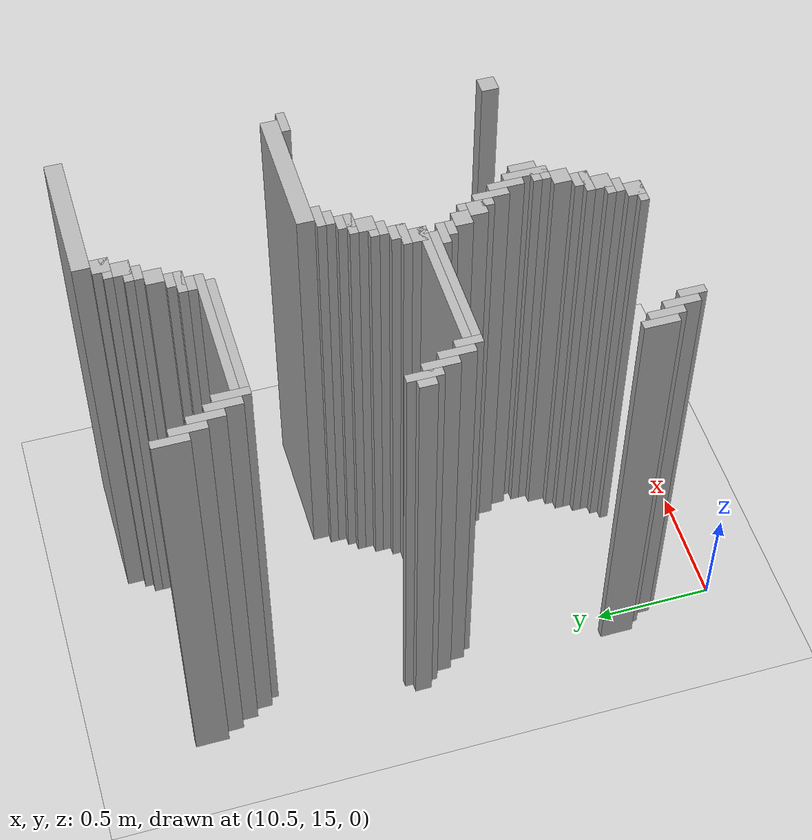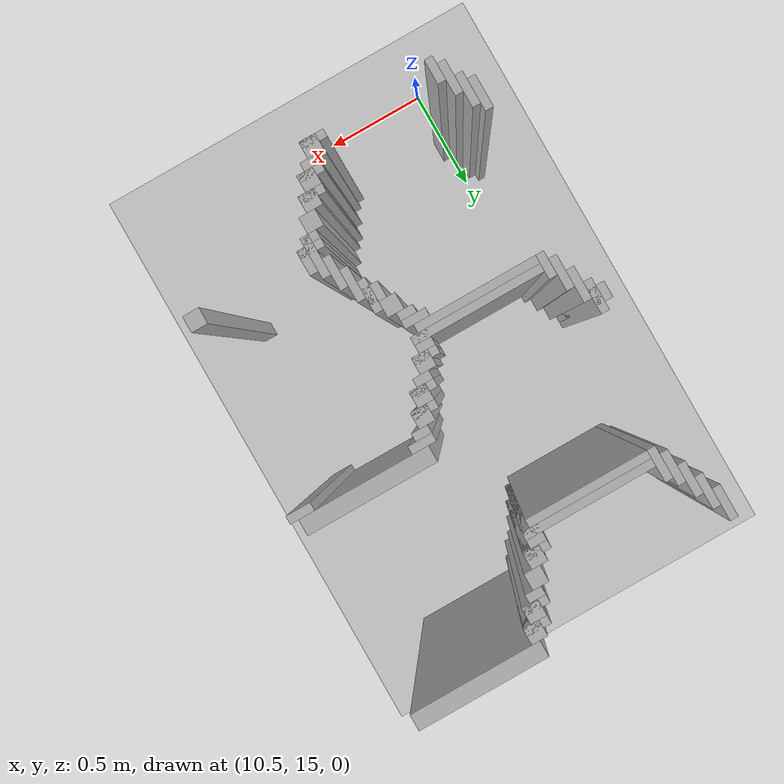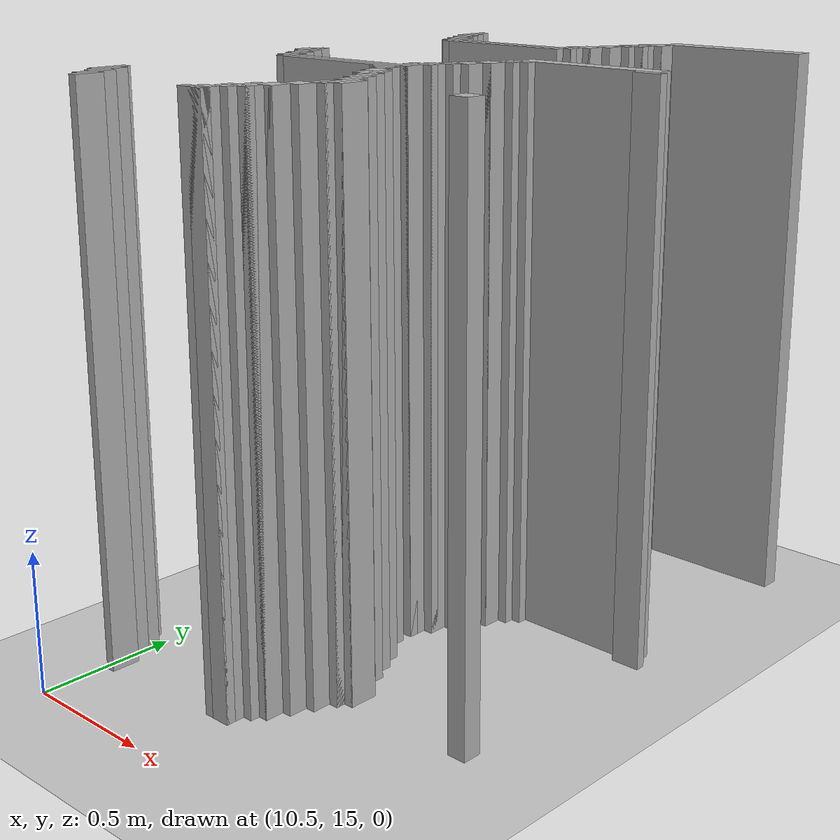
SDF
<sdf version="1.6">
 <world name="slam_world">
  <model name="ground_plane">
   <static>true</static>
   <link name="link">
    <collision name="collision">
     <geometry><plane><normal>0 0 1</normal><size>100 100</size></plane></geometry>
    </collision>
    <visual name="visual">
     <geometry><plane><normal>0 0 1</normal><size>100 100</size></plane></geometry>
     <material>
      <ambient>0.8 0.8 0.8 1</ambient>
      <diffuse>0.8 0.8 0.8 1</diffuse>
      <specular>0.8 0.8 0.8 1</specular>
     </material>
    </visual>
   </link>
  </model>
  <model name="wall_8">
   <static>true</static>
   <pose>11.519721577726218 17.366589327146173 1.0 0 0 0</pose>
   <link name="link">
    <collision name="collision">
     <geometry><box><size>0.5568445475638051 0.06960556844547564 2.0</size></box></geometry>
    </collision>
    <visual name="visual">
     <geometry><box><size>0.5568445475638051 0.06960556844547564 2.0</size></box></geometry>
     <material><ambient>0.5 0.5 0.5 1</ambient><diffuse>0.7 0.7 0.7 1</diffuse></material>
    </visual>
   </link>
  </model>
  <model name="wall_25">
   <static>true</static>
   <pose>11.241299303944315 17.296983758700694 1.0 0 0 0</pose>
   <link name="link">
    <collision name="collision">
     <geometry><box><size>0.06960556844547564 0.06960556844547564 2.0</size></box></geometry>
    </collision>
    <visual name="visual">
     <geometry><box><size>0.06960556844547564 0.06960556844547564 2.0</size></box></geometry>
     <material><ambient>0.5 0.5 0.5 1</ambient><diffuse>0.7 0.7 0.7 1</diffuse></material>
    </visual>
   </link>
  </model>
  <model name="wall_44">
   <static>true</static>
   <pose>10.38863109048724 17.22737819025522 1.0 0 0 0</pose>
   <link name="link">
    <collision name="collision">
     <geometry><box><size>0.03480278422273782 0.13921113689095127 2.0</size></box></geometry>
    </collision>
    <visual name="visual">
     <geometry><box><size>0.03480278422273782 0.13921113689095127 2.0</size></box></geometry>
     <material><ambient>0.5 0.5 0.5 1</ambient><diffuse>0.7 0.7 0.7 1</diffuse></material>
    </visual>
   </link>
  </model>
  <model name="wall_45">
   <static>true</static>
   <pose>11.223897911832946 17.279582366589327 1.0 0 0 0</pose>
   <link name="link">
    <collision name="collision">
     <geometry><box><size>0.10440835266821345 0.03480278422273782 2.0</size></box></geometry>
    </collision>
    <visual name="visual">
     <geometry><box><size>0.10440835266821345 0.03480278422273782 2.0</size></box></geometry>
     <material><ambient>0.5 0.5 0.5 1</ambient><diffuse>0.7 0.7 0.7 1</diffuse></material>
    </visual>
   </link>
  </model>
  <model name="wall_65">
   <static>true</static>
   <pose>11.206496519721577 17.22737819025522 1.0 0 0 0</pose>
   <link name="link">
    <collision name="collision">
     <geometry><box><size>0.06960556844547564 0.06960556844547564 2.0</size></box></geometry>
    </collision>
    <visual name="visual">
     <geometry><box><size>0.06960556844547564 0.06960556844547564 2.0</size></box></geometry>
     <material><ambient>0.5 0.5 0.5 1</ambient><diffuse>0.7 0.7 0.7 1</diffuse></material>
    </visual>
   </link>
  </model>
  <model name="wall_84">
   <static>true</static>
   <pose>10.423433874709977 17.157772621809745 1.0 0 0 0</pose>
   <link name="link">
    <collision name="collision">
     <geometry><box><size>0.03480278422273782 0.13921113689095127 2.0</size></box></geometry>
    </collision>
    <visual name="visual">
     <geometry><box><size>0.03480278422273782 0.13921113689095127 2.0</size></box></geometry>
     <material><ambient>0.5 0.5 0.5 1</ambient><diffuse>0.7 0.7 0.7 1</diffuse></material>
    </visual>
   </link>
  </model>
  <model name="wall_85">
   <static>true</static>
   <pose>11.189095127610209 17.209976798143853 1.0 0 0 0</pose>
   <link name="link">
    <collision name="collision">
     <geometry><box><size>0.10440835266821345 0.03480278422273782 2.0</size></box></geometry>
    </collision>
    <visual name="visual">
     <geometry><box><size>0.10440835266821345 0.03480278422273782 2.0</size></box></geometry>
     <material><ambient>0.5 0.5 0.5 1</ambient><diffuse>0.7 0.7 0.7 1</diffuse></material>
    </visual>
   </link>
  </model>
  <model name="wall_98">
   <static>true</static>
   <pose>11.17169373549884 17.17517401392111 1.0 0 0 0</pose>
   <link name="link">
    <collision name="collision">
     <geometry><box><size>0.06960556844547564 0.03480278422273782 2.0</size></box></geometry>
    </collision>
    <visual name="visual">
     <geometry><box><size>0.06960556844547564 0.03480278422273782 2.0</size></box></geometry>
     <material><ambient>0.5 0.5 0.5 1</ambient><diffuse>0.7 0.7 0.7 1</diffuse></material>
    </visual>
   </link>
  </model>
  <model name="wall_114">
   <static>true</static>
   <pose>10.458236658932714 17.08816705336427 1.0 0 0 0</pose>
   <link name="link">
    <collision name="collision">
     <geometry><box><size>0.03480278422273782 0.13921113689095127 2.0</size></box></geometry>
    </collision>
    <visual name="visual">
     <geometry><box><size>0.03480278422273782 0.13921113689095127 2.0</size></box></geometry>
     <material><ambient>0.5 0.5 0.5 1</ambient><diffuse>0.7 0.7 0.7 1</diffuse></material>
    </visual>
   </link>
  </model>
  <model name="wall_115">
   <static>true</static>
   <pose>11.1368909512761 17.122969837587007 1.0 0 0 0</pose>
   <link name="link">
    <collision name="collision">
     <geometry><box><size>0.06960556844547564 0.06960556844547564 2.0</size></box></geometry>
    </collision>
    <visual name="visual">
     <geometry><box><size>0.06960556844547564 0.06960556844547564 2.0</size></box></geometry>
     <material><ambient>0.5 0.5 0.5 1</ambient><diffuse>0.7 0.7 0.7 1</diffuse></material>
    </visual>
   </link>
  </model>
  <model name="wall_134">
   <static>true</static>
   <pose>10.493039443155451 17.01856148491879 1.0 0 0 0</pose>
   <link name="link">
    <collision name="collision">
     <geometry><box><size>0.03480278422273782 0.13921113689095127 2.0</size></box></geometry>
    </collision>
    <visual name="visual">
     <geometry><box><size>0.03480278422273782 0.13921113689095127 2.0</size></box></geometry>
     <material><ambient>0.5 0.5 0.5 1</ambient><diffuse>0.7 0.7 0.7 1</diffuse></material>
    </visual>
   </link>
  </model>
  <model name="wall_135">
   <static>true</static>
   <pose>11.102088167053363 17.053364269141532 1.0 0 0 0</pose>
   <link name="link">
    <collision name="collision">
     <geometry><box><size>0.06960556844547564 0.06960556844547564 2.0</size></box></geometry>
    </collision>
    <visual name="visual">
     <geometry><box><size>0.06960556844547564 0.06960556844547564 2.0</size></box></geometry>
     <material><ambient>0.5 0.5 0.5 1</ambient><diffuse>0.7 0.7 0.7 1</diffuse></material>
    </visual>
   </link>
  </model>
  <model name="wall_154">
   <static>true</static>
   <pose>10.52784222737819 16.983758700696054 1.0 0 0 0</pose>
   <link name="link">
    <collision name="collision">
     <geometry><box><size>0.03480278422273782 0.13921113689095127 2.0</size></box></geometry>
    </collision>
    <visual name="visual">
     <geometry><box><size>0.03480278422273782 0.13921113689095127 2.0</size></box></geometry>
     <material><ambient>0.5 0.5 0.5 1</ambient><diffuse>0.7 0.7 0.7 1</diffuse></material>
    </visual>
   </link>
  </model>
  <model name="wall_155">
   <static>true</static>
   <pose>11.084686774941995 17.035962877030162 1.0 0 0 0</pose>
   <link name="link">
    <collision name="collision">
     <geometry><box><size>0.10440835266821345 0.03480278422273782 2.0</size></box></geometry>
    </collision>
    <visual name="visual">
     <geometry><box><size>0.10440835266821345 0.03480278422273782 2.0</size></box></geometry>
     <material><ambient>0.5 0.5 0.5 1</ambient><diffuse>0.7 0.7 0.7 1</diffuse></material>
    </visual>
   </link>
  </model>
  <model name="wall_168">
   <static>true</static>
   <pose>11.067285382830626 16.983758700696054 1.0 0 0 0</pose>
   <link name="link">
    <collision name="collision">
     <geometry><box><size>0.06960556844547564 0.06960556844547564 2.0</size></box></geometry>
    </collision>
    <visual name="visual">
     <geometry><box><size>0.06960556844547564 0.06960556844547564 2.0</size></box></geometry>
     <material><ambient>0.5 0.5 0.5 1</ambient><diffuse>0.7 0.7 0.7 1</diffuse></material>
    </visual>
   </link>
  </model>
  <model name="wall_178">
   <static>true</static>
   <pose>10.82366589327146 16.966357308584687 1.0 0 0 0</pose>
   <link name="link">
    <collision name="collision">
     <geometry><box><size>0.5568445475638051 0.03480278422273782 2.0</size></box></geometry>
    </collision>
    <visual name="visual">
     <geometry><box><size>0.5568445475638051 0.03480278422273782 2.0</size></box></geometry>
     <material><ambient>0.5 0.5 0.5 1</ambient><diffuse>0.7 0.7 0.7 1</diffuse></material>
    </visual>
   </link>
  </model>
  <model name="wall_189">
   <static>true</static>
   <pose>10.806264501160092 16.93155452436195 1.0 0 0 0</pose>
   <link name="link">
    <collision name="collision">
     <geometry><box><size>0.5220417633410672 0.03480278422273782 2.0</size></box></geometry>
    </collision>
    <visual name="visual">
     <geometry><box><size>0.5220417633410672 0.03480278422273782 2.0</size></box></geometry>
     <material><ambient>0.5 0.5 0.5 1</ambient><diffuse>0.7 0.7 0.7 1</diffuse></material>
    </visual>
   </link>
  </model>
  <model name="wall_283">
   <static>true</static>
   <pose>11.519721577726218 16.531322505800464 1.0 0 0 0</pose>
   <link name="link">
    <collision name="collision">
     <geometry><box><size>0.5568445475638051 0.06960556844547564 2.0</size></box></geometry>
    </collision>
    <visual name="visual">
     <geometry><box><size>0.5568445475638051 0.06960556844547564 2.0</size></box></geometry>
     <material><ambient>0.5 0.5 0.5 1</ambient><diffuse>0.7 0.7 0.7 1</diffuse></material>
    </visual>
   </link>
  </model>
  <model name="wall_302">
   <static>true</static>
   <pose>11.258700696055683 16.479118329466356 1.0 0 0 0</pose>
   <link name="link">
    <collision name="collision">
     <geometry><box><size>0.10440835266821345 0.03480278422273782 2.0</size></box></geometry>
    </collision>
    <visual name="visual">
     <geometry><box><size>0.10440835266821345 0.03480278422273782 2.0</size></box></geometry>
     <material><ambient>0.5 0.5 0.5 1</ambient><diffuse>0.7 0.7 0.7 1</diffuse></material>
    </visual>
   </link>
  </model>
  <model name="wall_303">
   <static>true</static>
   <pose>11.780742459396752 16.479118329466356 1.0 0 0 0</pose>
   <link name="link">
    <collision name="collision">
     <geometry><box><size>0.10440835266821345 0.03480278422273782 2.0</size></box></geometry>
    </collision>
    <visual name="visual">
     <geometry><box><size>0.10440835266821345 0.03480278422273782 2.0</size></box></geometry>
     <material><ambient>0.5 0.5 0.5 1</ambient><diffuse>0.7 0.7 0.7 1</diffuse></material>
    </visual>
   </link>
  </model>
  <model name="wall_312">
   <static>true</static>
   <pose>11.241299303944315 16.44431554524362 1.0 0 0 0</pose>
   <link name="link">
    <collision name="collision">
     <geometry><box><size>0.06960556844547564 0.03480278422273782 2.0</size></box></geometry>
    </collision>
    <visual name="visual">
     <geometry><box><size>0.06960556844547564 0.03480278422273782 2.0</size></box></geometry>
     <material><ambient>0.5 0.5 0.5 1</ambient><diffuse>0.7 0.7 0.7 1</diffuse></material>
    </visual>
   </link>
  </model>
  <model name="wall_325">
   <static>true</static>
   <pose>11.206496519721577 16.39211136890951 1.0 0 0 0</pose>
   <link name="link">
    <collision name="collision">
     <geometry><box><size>0.06960556844547564 0.06960556844547564 2.0</size></box></geometry>
    </collision>
    <visual name="visual">
     <geometry><box><size>0.06960556844547564 0.06960556844547564 2.0</size></box></geometry>
     <material><ambient>0.5 0.5 0.5 1</ambient><diffuse>0.7 0.7 0.7 1</diffuse></material>
    </visual>
   </link>
  </model>
  <model name="wall_337">
   <static>true</static>
   <pose>10.423433874709977 16.322505800464036 1.0 0 0 0</pose>
   <link name="link">
    <collision name="collision">
     <geometry><box><size>0.03480278422273782 0.13921113689095127 2.0</size></box></geometry>
    </collision>
    <visual name="visual">
     <geometry><box><size>0.03480278422273782 0.13921113689095127 2.0</size></box></geometry>
     <material><ambient>0.5 0.5 0.5 1</ambient><diffuse>0.7 0.7 0.7 1</diffuse></material>
    </visual>
   </link>
  </model>
  <model name="wall_338">
   <static>true</static>
   <pose>11.189095127610209 16.374709976798144 1.0 0 0 0</pose>
   <link name="link">
    <collision name="collision">
     <geometry><box><size>0.10440835266821345 0.03480278422273782 2.0</size></box></geometry>
    </collision>
    <visual name="visual">
     <geometry><box><size>0.10440835266821345 0.03480278422273782 2.0</size></box></geometry>
     <material><ambient>0.5 0.5 0.5 1</ambient><diffuse>0.7 0.7 0.7 1</diffuse></material>
    </visual>
   </link>
  </model>
  <model name="wall_350">
   <static>true</static>
   <pose>10.406032482598608 16.322505800464036 1.0 0 0 0</pose>
   <link name="link">
    <collision name="collision">
     <geometry><box><size>0.06960556844547564 0.06960556844547564 2.0</size></box></geometry>
    </collision>
    <visual name="visual">
     <geometry><box><size>0.06960556844547564 0.06960556844547564 2.0</size></box></geometry>
     <material><ambient>0.5 0.5 0.5 1</ambient><diffuse>0.7 0.7 0.7 1</diffuse></material>
    </visual>
   </link>
  </model>
  <model name="wall_351">
   <static>true</static>
   <pose>11.17169373549884 16.322505800464036 1.0 0 0 0</pose>
   <link name="link">
    <collision name="collision">
     <geometry><box><size>0.06960556844547564 0.06960556844547564 2.0</size></box></geometry>
    </collision>
    <visual name="visual">
     <geometry><box><size>0.06960556844547564 0.06960556844547564 2.0</size></box></geometry>
     <material><ambient>0.5 0.5 0.5 1</ambient><diffuse>0.7 0.7 0.7 1</diffuse></material>
    </visual>
   </link>
  </model>
  <model name="wall_363">
   <static>true</static>
   <pose>10.458236658932714 16.25290023201856 1.0 0 0 0</pose>
   <link name="link">
    <collision name="collision">
     <geometry><box><size>0.03480278422273782 0.13921113689095127 2.0</size></box></geometry>
    </collision>
    <visual name="visual">
     <geometry><box><size>0.03480278422273782 0.13921113689095127 2.0</size></box></geometry>
     <material><ambient>0.5 0.5 0.5 1</ambient><diffuse>0.7 0.7 0.7 1</diffuse></material>
    </visual>
   </link>
  </model>
  <model name="wall_364">
   <static>true</static>
   <pose>11.154292343387471 16.30510440835267 1.0 0 0 0</pose>
   <link name="link">
    <collision name="collision">
     <geometry><box><size>0.10440835266821345 0.03480278422273782 2.0</size></box></geometry>
    </collision>
    <visual name="visual">
     <geometry><box><size>0.10440835266821345 0.03480278422273782 2.0</size></box></geometry>
     <material><ambient>0.5 0.5 0.5 1</ambient><diffuse>0.7 0.7 0.7 1</diffuse></material>
    </visual>
   </link>
  </model>
  <model name="wall_371">
   <static>true</static>
   <pose>11.1368909512761 16.270301624129928 1.0 0 0 0</pose>
   <link name="link">
    <collision name="collision">
     <geometry><box><size>0.06960556844547564 0.03480278422273782 2.0</size></box></geometry>
    </collision>
    <visual name="visual">
     <geometry><box><size>0.06960556844547564 0.03480278422273782 2.0</size></box></geometry>
     <material><ambient>0.5 0.5 0.5 1</ambient><diffuse>0.7 0.7 0.7 1</diffuse></material>
    </visual>
   </link>
  </model>
  <model name="wall_381">
   <static>true</static>
   <pose>10.493039443155451 16.183294663573086 1.0 0 0 0</pose>
   <link name="link">
    <collision name="collision">
     <geometry><box><size>0.03480278422273782 0.13921113689095127 2.0</size></box></geometry>
    </collision>
    <visual name="visual">
     <geometry><box><size>0.03480278422273782 0.13921113689095127 2.0</size></box></geometry>
     <material><ambient>0.5 0.5 0.5 1</ambient><diffuse>0.7 0.7 0.7 1</diffuse></material>
    </visual>
   </link>
  </model>
  <model name="wall_382">
   <static>true</static>
   <pose>11.102088167053363 16.218097447795824 1.0 0 0 0</pose>
   <link name="link">
    <collision name="collision">
     <geometry><box><size>0.06960556844547564 0.06960556844547564 2.0</size></box></geometry>
    </collision>
    <visual name="visual">
     <geometry><box><size>0.06960556844547564 0.06960556844547564 2.0</size></box></geometry>
     <material><ambient>0.5 0.5 0.5 1</ambient><diffuse>0.7 0.7 0.7 1</diffuse></material>
    </visual>
   </link>
  </model>
  <model name="wall_389">
   <static>true</static>
   <pose>11.084686774941995 16.200696055684453 1.0 0 0 0</pose>
   <link name="link">
    <collision name="collision">
     <geometry><box><size>0.10440835266821345 0.03480278422273782 2.0</size></box></geometry>
    </collision>
    <visual name="visual">
     <geometry><box><size>0.10440835266821345 0.03480278422273782 2.0</size></box></geometry>
     <material><ambient>0.5 0.5 0.5 1</ambient><diffuse>0.7 0.7 0.7 1</diffuse></material>
    </visual>
   </link>
  </model>
  <model name="wall_399">
   <static>true</static>
   <pose>10.52784222737819 16.13109048723898 1.0 0 0 0</pose>
   <link name="link">
    <collision name="collision">
     <geometry><box><size>0.03480278422273782 0.10440835266821345 2.0</size></box></geometry>
    </collision>
    <visual name="visual">
     <geometry><box><size>0.03480278422273782 0.10440835266821345 2.0</size></box></geometry>
     <material><ambient>0.5 0.5 0.5 1</ambient><diffuse>0.7 0.7 0.7 1</diffuse></material>
    </visual>
   </link>
  </model>
  <model name="wall_400">
   <static>true</static>
   <pose>11.067285382830626 16.14849187935035 1.0 0 0 0</pose>
   <link name="link">
    <collision name="collision">
     <geometry><box><size>0.06960556844547564 0.06960556844547564 2.0</size></box></geometry>
    </collision>
    <visual name="visual">
     <geometry><box><size>0.06960556844547564 0.06960556844547564 2.0</size></box></geometry>
     <material><ambient>0.5 0.5 0.5 1</ambient><diffuse>0.7 0.7 0.7 1</diffuse></material>
    </visual>
   </link>
  </model>
  <model name="wall_412">
   <static>true</static>
   <pose>10.82366589327146 16.13109048723898 1.0 0 0 0</pose>
   <link name="link">
    <collision name="collision">
     <geometry><box><size>0.5568445475638051 0.03480278422273782 2.0</size></box></geometry>
    </collision>
    <visual name="visual">
     <geometry><box><size>0.5568445475638051 0.03480278422273782 2.0</size></box></geometry>
     <material><ambient>0.5 0.5 0.5 1</ambient><diffuse>0.7 0.7 0.7 1</diffuse></material>
    </visual>
   </link>
  </model>
  <model name="wall_425">
   <static>true</static>
   <pose>10.806264501160092 16.09628770301624 1.0 0 0 0</pose>
   <link name="link">
    <collision name="collision">
     <geometry><box><size>0.5220417633410672 0.03480278422273782 2.0</size></box></geometry>
    </collision>
    <visual name="visual">
     <geometry><box><size>0.5220417633410672 0.03480278422273782 2.0</size></box></geometry>
     <material><ambient>0.5 0.5 0.5 1</ambient><diffuse>0.7 0.7 0.7 1</diffuse></material>
    </visual>
   </link>
  </model>
  <model name="wall_440">
   <static>true</static>
   <pose>11.049883990719257 16.061484918793504 1.0 0 0 0</pose>
   <link name="link">
    <collision name="collision">
     <geometry><box><size>0.10440835266821345 0.03480278422273782 2.0</size></box></geometry>
    </collision>
    <visual name="visual">
     <geometry><box><size>0.10440835266821345 0.03480278422273782 2.0</size></box></geometry>
     <material><ambient>0.5 0.5 0.5 1</ambient><diffuse>0.7 0.7 0.7 1</diffuse></material>
    </visual>
   </link>
  </model>
  <model name="wall_455">
   <static>true</static>
   <pose>11.067285382830626 16.026682134570766 1.0 0 0 0</pose>
   <link name="link">
    <collision name="collision">
     <geometry><box><size>0.06960556844547564 0.03480278422273782 2.0</size></box></geometry>
    </collision>
    <visual name="visual">
     <geometry><box><size>0.06960556844547564 0.03480278422273782 2.0</size></box></geometry>
     <material><ambient>0.5 0.5 0.5 1</ambient><diffuse>0.7 0.7 0.7 1</diffuse></material>
    </visual>
   </link>
  </model>
  <model name="wall_470">
   <static>true</static>
   <pose>11.102088167053363 15.974477958236658 1.0 0 0 0</pose>
   <link name="link">
    <collision name="collision">
     <geometry><box><size>0.06960556844547564 0.06960556844547564 2.0</size></box></geometry>
    </collision>
    <visual name="visual">
     <geometry><box><size>0.06960556844547564 0.06960556844547564 2.0</size></box></geometry>
     <material><ambient>0.5 0.5 0.5 1</ambient><diffuse>0.7 0.7 0.7 1</diffuse></material>
    </visual>
   </link>
  </model>
  <model name="wall_485">
   <static>true</static>
   <pose>11.154292343387471 15.904872389791183 1.0 0 0 0</pose>
   <link name="link">
    <collision name="collision">
     <geometry><box><size>0.03480278422273782 0.13921113689095127 2.0</size></box></geometry>
    </collision>
    <visual name="visual">
     <geometry><box><size>0.03480278422273782 0.13921113689095127 2.0</size></box></geometry>
     <material><ambient>0.5 0.5 0.5 1</ambient><diffuse>0.7 0.7 0.7 1</diffuse></material>
    </visual>
   </link>
  </model>
  <model name="wall_495">
   <static>true</static>
   <pose>11.1368909512761 15.904872389791183 1.0 0 0 0</pose>
   <link name="link">
    <collision name="collision">
     <geometry><box><size>0.06960556844547564 0.06960556844547564 2.0</size></box></geometry>
    </collision>
    <visual name="visual">
     <geometry><box><size>0.06960556844547564 0.06960556844547564 2.0</size></box></geometry>
     <material><ambient>0.5 0.5 0.5 1</ambient><diffuse>0.7 0.7 0.7 1</diffuse></material>
    </visual>
   </link>
  </model>
  <model name="wall_509">
   <static>true</static>
   <pose>11.189095127610209 15.835266821345707 1.0 0 0 0</pose>
   <link name="link">
    <collision name="collision">
     <geometry><box><size>0.03480278422273782 0.13921113689095127 2.0</size></box></geometry>
    </collision>
    <visual name="visual">
     <geometry><box><size>0.03480278422273782 0.13921113689095127 2.0</size></box></geometry>
     <material><ambient>0.5 0.5 0.5 1</ambient><diffuse>0.7 0.7 0.7 1</diffuse></material>
    </visual>
   </link>
  </model>
  <model name="wall_532">
   <static>true</static>
   <pose>11.223897911832946 15.765661252900232 1.0 0 0 0</pose>
   <link name="link">
    <collision name="collision">
     <geometry><box><size>0.03480278422273782 0.13921113689095127 2.0</size></box></geometry>
    </collision>
    <visual name="visual">
     <geometry><box><size>0.03480278422273782 0.13921113689095127 2.0</size></box></geometry>
     <material><ambient>0.5 0.5 0.5 1</ambient><diffuse>0.7 0.7 0.7 1</diffuse></material>
    </visual>
   </link>
  </model>
  <model name="wall_547">
   <static>true</static>
   <pose>11.258700696055683 15.678654292343387 1.0 0 0 0</pose>
   <link name="link">
    <collision name="collision">
     <geometry><box><size>0.03480278422273782 0.17401392111368907 2.0</size></box></geometry>
    </collision>
    <visual name="visual">
     <geometry><box><size>0.03480278422273782 0.17401392111368907 2.0</size></box></geometry>
     <material><ambient>0.5 0.5 0.5 1</ambient><diffuse>0.7 0.7 0.7 1</diffuse></material>
    </visual>
   </link>
  </model>
  <model name="wall_561">
   <static>true</static>
   <pose>11.293503480278423 15.678654292343387 1.0 0 0 0</pose>
   <link name="link">
    <collision name="collision">
     <geometry><box><size>0.03480278422273782 0.10440835266821345 2.0</size></box></geometry>
    </collision>
    <visual name="visual">
     <geometry><box><size>0.03480278422273782 0.10440835266821345 2.0</size></box></geometry>
     <material><ambient>0.5 0.5 0.5 1</ambient><diffuse>0.7 0.7 0.7 1</diffuse></material>
    </visual>
   </link>
  </model>
  <model name="wall_572">
   <static>true</static>
   <pose>11.763341067285383 15.661252900232018 1.0 0 0 0</pose>
   <link name="link">
    <collision name="collision">
     <geometry><box><size>0.06960556844547564 0.06960556844547564 2.0</size></box></geometry>
    </collision>
    <visual name="visual">
     <geometry><box><size>0.06960556844547564 0.06960556844547564 2.0</size></box></geometry>
     <material><ambient>0.5 0.5 0.5 1</ambient><diffuse>0.7 0.7 0.7 1</diffuse></material>
    </visual>
   </link>
  </model>
  <model name="wall_589">
   <static>true</static>
   <pose>11.258700696055683 15.64385150812065 1.0 0 0 0</pose>
   <link name="link">
    <collision name="collision">
     <geometry><box><size>0.10440835266821345 0.03480278422273782 2.0</size></box></geometry>
    </collision>
    <visual name="visual">
     <geometry><box><size>0.10440835266821345 0.03480278422273782 2.0</size></box></geometry>
     <material><ambient>0.5 0.5 0.5 1</ambient><diffuse>0.7 0.7 0.7 1</diffuse></material>
    </visual>
   </link>
  </model>
  <model name="wall_606">
   <static>true</static>
   <pose>11.241299303944315 15.609048723897912 1.0 0 0 0</pose>
   <link name="link">
    <collision name="collision">
     <geometry><box><size>0.06960556844547564 0.03480278422273782 2.0</size></box></geometry>
    </collision>
    <visual name="visual">
     <geometry><box><size>0.06960556844547564 0.03480278422273782 2.0</size></box></geometry>
     <material><ambient>0.5 0.5 0.5 1</ambient><diffuse>0.7 0.7 0.7 1</diffuse></material>
    </visual>
   </link>
  </model>
  <model name="wall_622">
   <static>true</static>
   <pose>11.206496519721577 15.556844547563804 1.0 0 0 0</pose>
   <link name="link">
    <collision name="collision">
     <geometry><box><size>0.06960556844547564 0.06960556844547564 2.0</size></box></geometry>
    </collision>
    <visual name="visual">
     <geometry><box><size>0.06960556844547564 0.06960556844547564 2.0</size></box></geometry>
     <material><ambient>0.5 0.5 0.5 1</ambient><diffuse>0.7 0.7 0.7 1</diffuse></material>
    </visual>
   </link>
  </model>
  <model name="wall_637">
   <static>true</static>
   <pose>10.423433874709977 15.452436194895592 1.0 0 0 0</pose>
   <link name="link">
    <collision name="collision">
     <geometry><box><size>0.03480278422273782 0.13921113689095127 2.0</size></box></geometry>
    </collision>
    <visual name="visual">
     <geometry><box><size>0.03480278422273782 0.13921113689095127 2.0</size></box></geometry>
     <material><ambient>0.5 0.5 0.5 1</ambient><diffuse>0.7 0.7 0.7 1</diffuse></material>
    </visual>
   </link>
  </model>
  <model name="wall_638">
   <static>true</static>
   <pose>11.17169373549884 15.48723897911833 1.0 0 0 0</pose>
   <link name="link">
    <collision name="collision">
     <geometry><box><size>0.06960556844547564 0.06960556844547564 2.0</size></box></geometry>
    </collision>
    <visual name="visual">
     <geometry><box><size>0.06960556844547564 0.06960556844547564 2.0</size></box></geometry>
     <material><ambient>0.5 0.5 0.5 1</ambient><diffuse>0.7 0.7 0.7 1</diffuse></material>
    </visual>
   </link>
  </model>
  <model name="wall_653">
   <static>true</static>
   <pose>10.458236658932714 15.417633410672853 1.0 0 0 0</pose>
   <link name="link">
    <collision name="collision">
     <geometry><box><size>0.03480278422273782 0.13921113689095127 2.0</size></box></geometry>
    </collision>
    <visual name="visual">
     <geometry><box><size>0.03480278422273782 0.13921113689095127 2.0</size></box></geometry>
     <material><ambient>0.5 0.5 0.5 1</ambient><diffuse>0.7 0.7 0.7 1</diffuse></material>
    </visual>
   </link>
  </model>
  <model name="wall_654">
   <static>true</static>
   <pose>11.154292343387471 15.46983758700696 1.0 0 0 0</pose>
   <link name="link">
    <collision name="collision">
     <geometry><box><size>0.10440835266821345 0.03480278422273782 2.0</size></box></geometry>
    </collision>
    <visual name="visual">
     <geometry><box><size>0.10440835266821345 0.03480278422273782 2.0</size></box></geometry>
     <material><ambient>0.5 0.5 0.5 1</ambient><diffuse>0.7 0.7 0.7 1</diffuse></material>
    </visual>
   </link>
  </model>
  <model name="wall_666">
   <static>true</static>
   <pose>11.1368909512761 15.417633410672853 1.0 0 0 0</pose>
   <link name="link">
    <collision name="collision">
     <geometry><box><size>0.06960556844547564 0.06960556844547564 2.0</size></box></geometry>
    </collision>
    <visual name="visual">
     <geometry><box><size>0.06960556844547564 0.06960556844547564 2.0</size></box></geometry>
     <material><ambient>0.5 0.5 0.5 1</ambient><diffuse>0.7 0.7 0.7 1</diffuse></material>
    </visual>
   </link>
  </model>
  <model name="wall_680">
   <static>true</static>
   <pose>10.493039443155451 15.348027842227378 1.0 0 0 0</pose>
   <link name="link">
    <collision name="collision">
     <geometry><box><size>0.03480278422273782 0.13921113689095127 2.0</size></box></geometry>
    </collision>
    <visual name="visual">
     <geometry><box><size>0.03480278422273782 0.13921113689095127 2.0</size></box></geometry>
     <material><ambient>0.5 0.5 0.5 1</ambient><diffuse>0.7 0.7 0.7 1</diffuse></material>
    </visual>
   </link>
  </model>
  <model name="wall_681">
   <static>true</static>
   <pose>11.119489559164732 15.400232018561484 1.0 0 0 0</pose>
   <link name="link">
    <collision name="collision">
     <geometry><box><size>0.10440835266821345 0.03480278422273782 2.0</size></box></geometry>
    </collision>
    <visual name="visual">
     <geometry><box><size>0.10440835266821345 0.03480278422273782 2.0</size></box></geometry>
     <material><ambient>0.5 0.5 0.5 1</ambient><diffuse>0.7 0.7 0.7 1</diffuse></material>
    </visual>
   </link>
  </model>
  <model name="wall_690">
   <static>true</static>
   <pose>11.102088167053363 15.365429234338746 1.0 0 0 0</pose>
   <link name="link">
    <collision name="collision">
     <geometry><box><size>0.06960556844547564 0.03480278422273782 2.0</size></box></geometry>
    </collision>
    <visual name="visual">
     <geometry><box><size>0.06960556844547564 0.03480278422273782 2.0</size></box></geometry>
     <material><ambient>0.5 0.5 0.5 1</ambient><diffuse>0.7 0.7 0.7 1</diffuse></material>
    </visual>
   </link>
  </model>
  <model name="wall_702">
   <static>true</static>
   <pose>10.52784222737819 15.295823665893272 1.0 0 0 0</pose>
   <link name="link">
    <collision name="collision">
     <geometry><box><size>0.03480278422273782 0.10440835266821345 2.0</size></box></geometry>
    </collision>
    <visual name="visual">
     <geometry><box><size>0.03480278422273782 0.10440835266821345 2.0</size></box></geometry>
     <material><ambient>0.5 0.5 0.5 1</ambient><diffuse>0.7 0.7 0.7 1</diffuse></material>
    </visual>
   </link>
  </model>
  <model name="wall_703">
   <static>true</static>
   <pose>11.067285382830626 15.31322505800464 1.0 0 0 0</pose>
   <link name="link">
    <collision name="collision">
     <geometry><box><size>0.06960556844547564 0.06960556844547564 2.0</size></box></geometry>
    </collision>
    <visual name="visual">
     <geometry><box><size>0.06960556844547564 0.06960556844547564 2.0</size></box></geometry>
     <material><ambient>0.5 0.5 0.5 1</ambient><diffuse>0.7 0.7 0.7 1</diffuse></material>
    </visual>
   </link>
  </model>
  <model name="wall_719">
   <static>true</static>
   <pose>11.049883990719257 15.295823665893272 1.0 0 0 0</pose>
   <link name="link">
    <collision name="collision">
     <geometry><box><size>0.10440835266821345 0.03480278422273782 2.0</size></box></geometry>
    </collision>
    <visual name="visual">
     <geometry><box><size>0.10440835266821345 0.03480278422273782 2.0</size></box></geometry>
     <material><ambient>0.5 0.5 0.5 1</ambient><diffuse>0.7 0.7 0.7 1</diffuse></material>
    </visual>
   </link>
  </model>
 </world>
</sdf>
